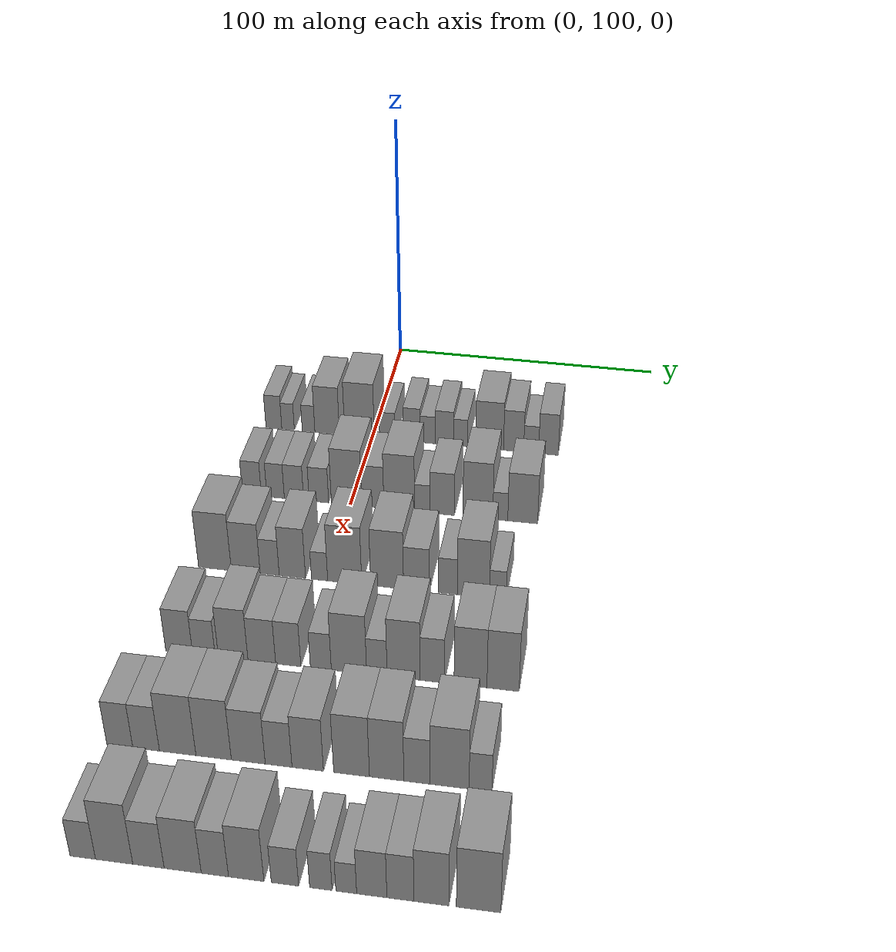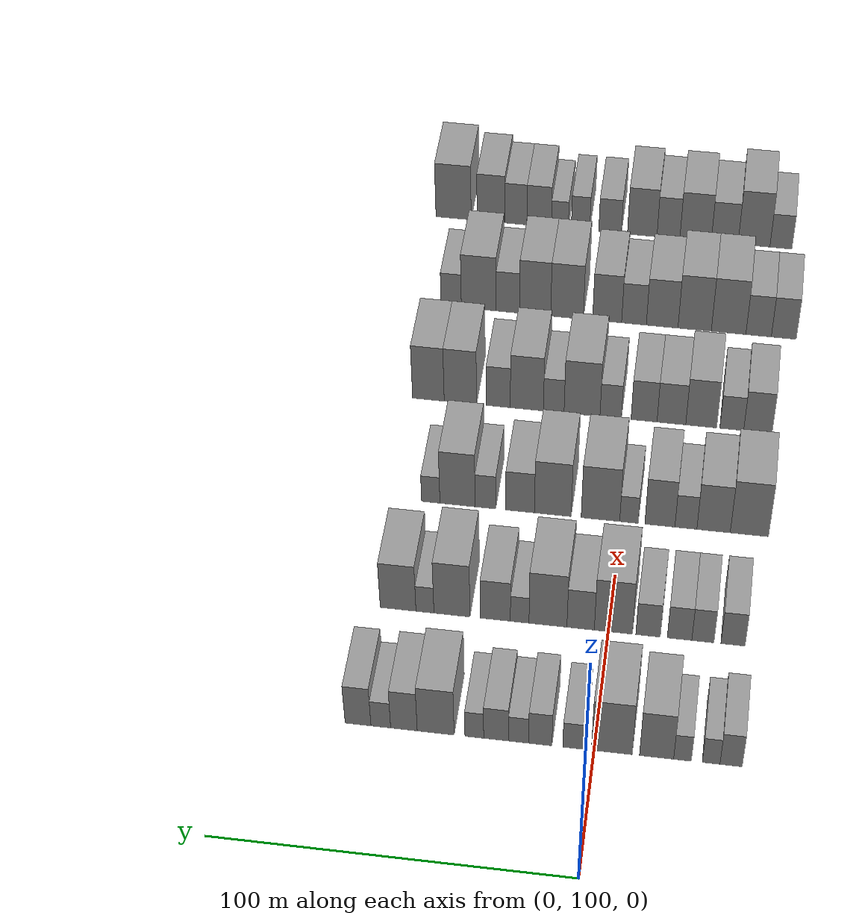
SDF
<sdf version="1.6">
 <world name="default">
  <model name="building_68">
   <static>1</static>
   <pose>50.0000 62.6498 0 0.000000 0.000000 0.000000</pose>
   <link name="link">
    <pose>0 0 7.50 0 0 0</pose>
    <collision name="collision"><geometry><box><size>20.0000 6.0474 15.0000</size></box></geometry></collision>
    <visual name="visual">
     <cast_shadows>0</cast_shadows>
     <geometry><box><size>20.0000 6.0474 15.0000</size></box></geometry>
     <material>
      <script>
       <uri>model://grey_wall/materials/scripts</uri>
       <uri>model://grey_wall/materials/textures</uri>
       <name>vrc/grey_wall</name>
      </script>
     </material>
    </visual>
   </link>
  </model>
  <model name="building_69">
   <static>1</static>
   <pose>50.0000 68.0770 0 0.000000 0.000000 0.000000</pose>
   <link name="link">
    <pose>0 0 6.00 0 0 0</pose>
    <collision name="collision"><geometry><box><size>20.0000 4.8069 12.0000</size></box></geometry></collision>
    <visual name="visual">
     <cast_shadows>0</cast_shadows>
     <geometry><box><size>20.0000 4.8069 12.0000</size></box></geometry>
     <material>
      <script>
       <uri>model://grey_wall/materials/scripts</uri>
       <uri>model://grey_wall/materials/textures</uri>
       <name>vrc/grey_wall</name>
      </script>
     </material>
    </visual>
   </link>
  </model>
  <model name="building_70">
   <static>1</static>
   <pose>50.0000 75.8929 0 0.000000 0.000000 0.000000</pose>
   <link name="link">
    <pose>0 0 6.00 0 0 0</pose>
    <collision name="collision"><geometry><box><size>20.0000 4.8249 12.0000</size></box></geometry></collision>
    <visual name="visual">
     <cast_shadows>0</cast_shadows>
     <geometry><box><size>20.0000 4.8249 12.0000</size></box></geometry>
     <material>
      <script>
       <uri>model://grey_wall/materials/scripts</uri>
       <uri>model://grey_wall/materials/textures</uri>
       <name>vrc/grey_wall</name>
      </script>
     </material>
    </visual>
   </link>
  </model>
  <model name="building_71">
   <static>1</static>
   <pose>50.0000 82.9757 0 0.000000 0.000000 0.000000</pose>
   <link name="link">
    <pose>0 0 10.50 0 0 0</pose>
    <collision name="collision"><geometry><box><size>20.0000 9.3408 21.0000</size></box></geometry></collision>
    <visual name="visual">
     <cast_shadows>0</cast_shadows>
     <geometry><box><size>20.0000 9.3408 21.0000</size></box></geometry>
     <material>
      <script>
       <uri>model://grey_wall/materials/scripts</uri>
       <uri>model://grey_wall/materials/textures</uri>
       <name>vrc/grey_wall</name>
      </script>
     </material>
    </visual>
   </link>
  </model>
  <model name="building_72">
   <static>1</static>
   <pose>50.0000 95.2500 0 0.000000 0.000000 0.000000</pose>
   <link name="link">
    <pose>0 0 12.00 0 0 0</pose>
    <collision name="collision"><geometry><box><size>20.0000 11.2077 24.0000</size></box></geometry></collision>
    <visual name="visual">
     <cast_shadows>0</cast_shadows>
     <geometry><box><size>20.0000 11.2077 24.0000</size></box></geometry>
     <material>
      <script>
       <uri>model://grey_wall/materials/scripts</uri>
       <uri>model://grey_wall/materials/textures</uri>
       <name>vrc/grey_wall</name>
      </script>
     </material>
    </visual>
   </link>
  </model>
  <model name="building_73">
   <static>1</static>
   <pose>50.0000 105.7964 0 0.000000 0.000000 0.000000</pose>
   <link name="link">
    <pose>0 0 6.00 0 0 0</pose>
    <collision name="collision"><geometry><box><size>20.0000 5.8852 12.0000</size></box></geometry></collision>
    <visual name="visual">
     <cast_shadows>0</cast_shadows>
     <geometry><box><size>20.0000 5.8852 12.0000</size></box></geometry>
     <material>
      <script>
       <uri>model://grey_wall/materials/scripts</uri>
       <uri>model://grey_wall/materials/textures</uri>
       <name>vrc/grey_wall</name>
      </script>
     </material>
    </visual>
   </link>
  </model>
  <model name="building_74">
   <static>1</static>
   <pose>50.0000 114.9547 0 0.000000 0.000000 0.000000</pose>
   <link name="link">
    <pose>0 0 7.50 0 0 0</pose>
    <collision name="collision"><geometry><box><size>20.0000 6.4314 15.0000</size></box></geometry></collision>
    <visual name="visual">
     <cast_shadows>0</cast_shadows>
     <geometry><box><size>20.0000 6.4314 15.0000</size></box></geometry>
     <material>
      <script>
       <uri>model://grey_wall/materials/scripts</uri>
       <uri>model://grey_wall/materials/textures</uri>
       <name>vrc/grey_wall</name>
      </script>
     </material>
    </visual>
   </link>
  </model>
  <model name="building_75">
   <static>1</static>
   <pose>50.0000 120.9722 0 0.000000 0.000000 0.000000</pose>
   <link name="link">
    <pose>0 0 6.00 0 0 0</pose>
    <collision name="collision"><geometry><box><size>20.0000 5.6037 12.0000</size></box></geometry></collision>
    <visual name="visual">
     <cast_shadows>0</cast_shadows>
     <geometry><box><size>20.0000 5.6037 12.0000</size></box></geometry>
     <material>
      <script>
       <uri>model://grey_wall/materials/scripts</uri>
       <uri>model://grey_wall/materials/textures</uri>
       <name>vrc/grey_wall</name>
      </script>
     </material>
    </visual>
   </link>
  </model>
  <model name="building_76">
   <static>1</static>
   <pose>50.0000 127.1886 0 0.000000 0.000000 0.000000</pose>
   <link name="link">
    <pose>0 0 7.50 0 0 0</pose>
    <collision name="collision"><geometry><box><size>20.0000 6.8289 15.0000</size></box></geometry></collision>
    <visual name="visual">
     <cast_shadows>0</cast_shadows>
     <geometry><box><size>20.0000 6.8289 15.0000</size></box></geometry>
     <material>
      <script>
       <uri>model://grey_wall/materials/scripts</uri>
       <uri>model://grey_wall/materials/textures</uri>
       <name>vrc/grey_wall</name>
      </script>
     </material>
    </visual>
   </link>
  </model>
  <model name="building_77">
   <static>1</static>
   <pose>50.0000 133.1987 0 0.000000 0.000000 0.000000</pose>
   <link name="link">
    <pose>0 0 6.00 0 0 0</pose>
    <collision name="collision"><geometry><box><size>20.0000 5.1913 12.0000</size></box></geometry></collision>
    <visual name="visual">
     <cast_shadows>0</cast_shadows>
     <geometry><box><size>20.0000 5.1913 12.0000</size></box></geometry>
     <material>
      <script>
       <uri>model://grey_wall/materials/scripts</uri>
       <uri>model://grey_wall/materials/textures</uri>
       <name>vrc/grey_wall</name>
      </script>
     </material>
    </visual>
   </link>
  </model>
  <model name="building_78">
   <static>1</static>
   <pose>50.0000 143.9286 0 0.000000 0.000000 0.000000</pose>
   <link name="link">
    <pose>0 0 10.50 0 0 0</pose>
    <collision name="collision"><geometry><box><size>20.0000 10.2685 21.0000</size></box></geometry></collision>
    <visual name="visual">
     <cast_shadows>0</cast_shadows>
     <geometry><box><size>20.0000 10.2685 21.0000</size></box></geometry>
     <material>
      <script>
       <uri>model://grey_wall/materials/scripts</uri>
       <uri>model://grey_wall/materials/textures</uri>
       <name>vrc/grey_wall</name>
      </script>
     </material>
    </visual>
   </link>
  </model>
  <model name="building_79">
   <static>1</static>
   <pose>50.0000 152.7708 0 0.000000 0.000000 0.000000</pose>
   <link name="link">
    <pose>0 0 9.00 0 0 0</pose>
    <collision name="collision"><geometry><box><size>20.0000 7.4159 18.0000</size></box></geometry></collision>
    <visual name="visual">
     <cast_shadows>0</cast_shadows>
     <geometry><box><size>20.0000 7.4159 18.0000</size></box></geometry>
     <material>
      <script>
       <uri>model://grey_wall/materials/scripts</uri>
       <uri>model://grey_wall/materials/textures</uri>
       <name>vrc/grey_wall</name>
      </script>
     </material>
    </visual>
   </link>
  </model>
  <model name="building_80">
   <static>1</static>
   <pose>50.0000 159.2248 0 0.000000 0.000000 0.000000</pose>
   <link name="link">
    <pose>0 0 6.00 0 0 0</pose>
    <collision name="collision"><geometry><box><size>20.0000 5.4920 12.0000</size></box></geometry></collision>
    <visual name="visual">
     <cast_shadows>0</cast_shadows>
     <geometry><box><size>20.0000 5.4920 12.0000</size></box></geometry>
     <material>
      <script>
       <uri>model://grey_wall/materials/scripts</uri>
       <uri>model://grey_wall/materials/textures</uri>
       <name>vrc/grey_wall</name>
      </script>
     </material>
    </visual>
   </link>
  </model>
  <model name="building_81">
   <static>1</static>
   <pose>50.0000 165.5749 0 0.000000 0.000000 0.000000</pose>
   <link name="link">
    <pose>0 0 9.00 0 0 0</pose>
    <collision name="collision"><geometry><box><size>20.0000 7.2083 18.0000</size></box></geometry></collision>
    <visual name="visual">
     <cast_shadows>0</cast_shadows>
     <geometry><box><size>20.0000 7.2083 18.0000</size></box></geometry>
     <material>
      <script>
       <uri>model://grey_wall/materials/scripts</uri>
       <uri>model://grey_wall/materials/textures</uri>
       <name>vrc/grey_wall</name>
      </script>
     </material>
    </visual>
   </link>
  </model>
  <model name="building_204">
   <static>1</static>
   <pose>90.0000 64.6598 0 0.000000 0.000000 0.000000</pose>
   <link name="link">
    <pose>0 0 7.50 0 0 0</pose>
    <collision name="collision"><geometry><box><size>20.0000 6.8189 15.0000</size></box></geometry></collision>
    <visual name="visual">
     <cast_shadows>0</cast_shadows>
     <geometry><box><size>20.0000 6.8189 15.0000</size></box></geometry>
     <material>
      <script>
       <uri>model://grey_wall/materials/scripts</uri>
       <uri>model://grey_wall/materials/textures</uri>
       <name>vrc/grey_wall</name>
      </script>
     </material>
    </visual>
   </link>
  </model>
  <model name="building_205">
   <static>1</static>
   <pose>90.0000 73.2095 0 0.000000 0.000000 0.000000</pose>
   <link name="link">
    <pose>0 0 7.50 0 0 0</pose>
    <collision name="collision"><geometry><box><size>20.0000 6.2806 15.0000</size></box></geometry></collision>
    <visual name="visual">
     <cast_shadows>0</cast_shadows>
     <geometry><box><size>20.0000 6.2806 15.0000</size></box></geometry>
     <material>
      <script>
       <uri>model://grey_wall/materials/scripts</uri>
       <uri>model://grey_wall/materials/textures</uri>
       <name>vrc/grey_wall</name>
      </script>
     </material>
    </visual>
   </link>
  </model>
  <model name="building_206">
   <static>1</static>
   <pose>90.0000 79.8359 0 0.000000 0.000000 0.000000</pose>
   <link name="link">
    <pose>0 0 7.50 0 0 0</pose>
    <collision name="collision"><geometry><box><size>20.0000 6.9722 15.0000</size></box></geometry></collision>
    <visual name="visual">
     <cast_shadows>0</cast_shadows>
     <geometry><box><size>20.0000 6.9722 15.0000</size></box></geometry>
     <material>
      <script>
       <uri>model://grey_wall/materials/scripts</uri>
       <uri>model://grey_wall/materials/textures</uri>
       <name>vrc/grey_wall</name>
      </script>
     </material>
    </visual>
   </link>
  </model>
  <model name="building_207">
   <static>1</static>
   <pose>90.0000 88.8067 0 0.000000 0.000000 0.000000</pose>
   <link name="link">
    <pose>0 0 7.50 0 0 0</pose>
    <collision name="collision"><geometry><box><size>20.0000 6.9694 15.0000</size></box></geometry></collision>
    <visual name="visual">
     <cast_shadows>0</cast_shadows>
     <geometry><box><size>20.0000 6.9694 15.0000</size></box></geometry>
     <material>
      <script>
       <uri>model://grey_wall/materials/scripts</uri>
       <uri>model://grey_wall/materials/textures</uri>
       <name>vrc/grey_wall</name>
      </script>
     </material>
    </visual>
   </link>
  </model>
  <model name="building_208">
   <static>1</static>
   <pose>90.0000 98.7332 0 0.000000 0.000000 0.000000</pose>
   <link name="link">
    <pose>0 0 12.00 0 0 0</pose>
    <collision name="collision"><geometry><box><size>20.0000 10.8836 24.0000</size></box></geometry></collision>
    <visual name="visual">
     <cast_shadows>0</cast_shadows>
     <geometry><box><size>20.0000 10.8836 24.0000</size></box></geometry>
     <material>
      <script>
       <uri>model://grey_wall/materials/scripts</uri>
       <uri>model://grey_wall/materials/textures</uri>
       <name>vrc/grey_wall</name>
      </script>
     </material>
    </visual>
   </link>
  </model>
  <model name="building_209">
   <static>1</static>
   <pose>90.0000 108.1023 0 0.000000 0.000000 0.000000</pose>
   <link name="link">
    <pose>0 0 9.00 0 0 0</pose>
    <collision name="collision"><geometry><box><size>20.0000 7.8547 18.0000</size></box></geometry></collision>
    <visual name="visual">
     <cast_shadows>0</cast_shadows>
     <geometry><box><size>20.0000 7.8547 18.0000</size></box></geometry>
     <material>
      <script>
       <uri>model://grey_wall/materials/scripts</uri>
       <uri>model://grey_wall/materials/textures</uri>
       <name>vrc/grey_wall</name>
      </script>
     </material>
    </visual>
   </link>
  </model>
  <model name="building_210">
   <static>1</static>
   <pose>90.0000 117.4750 0 0.000000 0.000000 0.000000</pose>
   <link name="link">
    <pose>0 0 12.00 0 0 0</pose>
    <collision name="collision"><geometry><box><size>20.0000 10.8906 24.0000</size></box></geometry></collision>
    <visual name="visual">
     <cast_shadows>0</cast_shadows>
     <geometry><box><size>20.0000 10.8906 24.0000</size></box></geometry>
     <material>
      <script>
       <uri>model://grey_wall/materials/scripts</uri>
       <uri>model://grey_wall/materials/textures</uri>
       <name>vrc/grey_wall</name>
      </script>
     </material>
    </visual>
   </link>
  </model>
  <model name="building_211">
   <static>1</static>
   <pose>90.0000 125.5967 0 0.000000 0.000000 0.000000</pose>
   <link name="link">
    <pose>0 0 6.00 0 0 0</pose>
    <collision name="collision"><geometry><box><size>20.0000 5.3529 12.0000</size></box></geometry></collision>
    <visual name="visual">
     <cast_shadows>0</cast_shadows>
     <geometry><box><size>20.0000 5.3529 12.0000</size></box></geometry>
     <material>
      <script>
       <uri>model://grey_wall/materials/scripts</uri>
       <uri>model://grey_wall/materials/textures</uri>
       <name>vrc/grey_wall</name>
      </script>
     </material>
    </visual>
   </link>
  </model>
  <model name="building_212">
   <static>1</static>
   <pose>90.0000 132.6022 0 0.000000 0.000000 0.000000</pose>
   <link name="link">
    <pose>0 0 9.00 0 0 0</pose>
    <collision name="collision"><geometry><box><size>20.0000 8.6582 18.0000</size></box></geometry></collision>
    <visual name="visual">
     <cast_shadows>0</cast_shadows>
     <geometry><box><size>20.0000 8.6582 18.0000</size></box></geometry>
     <material>
      <script>
       <uri>model://grey_wall/materials/scripts</uri>
       <uri>model://grey_wall/materials/textures</uri>
       <name>vrc/grey_wall</name>
      </script>
     </material>
    </visual>
   </link>
  </model>
  <model name="building_213">
   <static>1</static>
   <pose>90.0000 145.1424 0 0.000000 0.000000 0.000000</pose>
   <link name="link">
    <pose>0 0 12.00 0 0 0</pose>
    <collision name="collision"><geometry><box><size>20.0000 10.4220 24.0000</size></box></geometry></collision>
    <visual name="visual">
     <cast_shadows>0</cast_shadows>
     <geometry><box><size>20.0000 10.4220 24.0000</size></box></geometry>
     <material>
      <script>
       <uri>model://grey_wall/materials/scripts</uri>
       <uri>model://grey_wall/materials/textures</uri>
       <name>vrc/grey_wall</name>
      </script>
     </material>
    </visual>
   </link>
  </model>
  <model name="building_214">
   <static>1</static>
   <pose>90.0000 152.9586 0 0.000000 0.000000 0.000000</pose>
   <link name="link">
    <pose>0 0 6.00 0 0 0</pose>
    <collision name="collision"><geometry><box><size>20.0000 5.2104 12.0000</size></box></geometry></collision>
    <visual name="visual">
     <cast_shadows>0</cast_shadows>
     <geometry><box><size>20.0000 5.2104 12.0000</size></box></geometry>
     <material>
      <script>
       <uri>model://grey_wall/materials/scripts</uri>
       <uri>model://grey_wall/materials/textures</uri>
       <name>vrc/grey_wall</name>
      </script>
     </material>
    </visual>
   </link>
  </model>
  <model name="building_215">
   <static>1</static>
   <pose>90.0000 160.7411 0 0.000000 0.000000 0.000000</pose>
   <link name="link">
    <pose>0 0 10.50 0 0 0</pose>
    <collision name="collision"><geometry><box><size>20.0000 10.3547 21.0000</size></box></geometry></collision>
    <visual name="visual">
     <cast_shadows>0</cast_shadows>
     <geometry><box><size>20.0000 10.3547 21.0000</size></box></geometry>
     <material>
      <script>
       <uri>model://grey_wall/materials/scripts</uri>
       <uri>model://grey_wall/materials/textures</uri>
       <name>vrc/grey_wall</name>
      </script>
     </material>
    </visual>
   </link>
  </model>
  <model name="building_334">
   <static>1</static>
   <pose>130.0000 62.3949 0 0.000000 0.000000 0.000000</pose>
   <link name="link">
    <pose>0 0 12.00 0 0 0</pose>
    <collision name="collision"><geometry><box><size>20.0000 11.2468 24.0000</size></box></geometry></collision>
    <visual name="visual">
     <cast_shadows>0</cast_shadows>
     <geometry><box><size>20.0000 11.2468 24.0000</size></box></geometry>
     <material>
      <script>
       <uri>model://grey_wall/materials/scripts</uri>
       <uri>model://grey_wall/materials/textures</uri>
       <name>vrc/grey_wall</name>
      </script>
     </material>
    </visual>
   </link>
  </model>
  <model name="building_335">
   <static>1</static>
   <pose>130.0000 72.9431 0 0.000000 0.000000 0.000000</pose>
   <link name="link">
    <pose>0 0 10.50 0 0 0</pose>
    <collision name="collision"><geometry><box><size>20.0000 9.8496 21.0000</size></box></geometry></collision>
    <visual name="visual">
     <cast_shadows>0</cast_shadows>
     <geometry><box><size>20.0000 9.8496 21.0000</size></box></geometry>
     <material>
      <script>
       <uri>model://grey_wall/materials/scripts</uri>
       <uri>model://grey_wall/materials/textures</uri>
       <name>vrc/grey_wall</name>
      </script>
     </material>
    </visual>
   </link>
  </model>
  <model name="building_336">
   <static>1</static>
   <pose>130.0000 81.1132 0 0.000000 0.000000 0.000000</pose>
   <link name="link">
    <pose>0 0 7.50 0 0 0</pose>
    <collision name="collision"><geometry><box><size>20.0000 6.4907 15.0000</size></box></geometry></collision>
    <visual name="visual">
     <cast_shadows>0</cast_shadows>
     <geometry><box><size>20.0000 6.4907 15.0000</size></box></geometry>
     <material>
      <script>
       <uri>model://grey_wall/materials/scripts</uri>
       <uri>model://grey_wall/materials/textures</uri>
       <name>vrc/grey_wall</name>
      </script>
     </material>
    </visual>
   </link>
  </model>
  <model name="building_337">
   <static>1</static>
   <pose>130.0000 88.8090 0 0.000000 0.000000 0.000000</pose>
   <link name="link">
    <pose>0 0 10.50 0 0 0</pose>
    <collision name="collision"><geometry><box><size>20.0000 8.9009 21.0000</size></box></geometry></collision>
    <visual name="visual">
     <cast_shadows>0</cast_shadows>
     <geometry><box><size>20.0000 8.9009 21.0000</size></box></geometry>
     <material>
      <script>
       <uri>model://grey_wall/materials/scripts</uri>
       <uri>model://grey_wall/materials/textures</uri>
       <name>vrc/grey_wall</name>
      </script>
     </material>
    </visual>
   </link>
  </model>
  <model name="building_338">
   <static>1</static>
   <pose>130.0000 97.9963 0 0.000000 0.000000 0.000000</pose>
   <link name="link">
    <pose>0 0 6.00 0 0 0</pose>
    <collision name="collision"><geometry><box><size>20.0000 5.4737 12.0000</size></box></geometry></collision>
    <visual name="visual">
     <cast_shadows>0</cast_shadows>
     <geometry><box><size>20.0000 5.4737 12.0000</size></box></geometry>
     <material>
      <script>
       <uri>model://grey_wall/materials/scripts</uri>
       <uri>model://grey_wall/materials/textures</uri>
       <name>vrc/grey_wall</name>
      </script>
     </material>
    </visual>
   </link>
  </model>
  <model name="building_339">
   <static>1</static>
   <pose>130.0000 106.4595 0 0.000000 0.000000 0.000000</pose>
   <link name="link">
    <pose>0 0 12.00 0 0 0</pose>
    <collision name="collision"><geometry><box><size>20.0000 11.4526 24.0000</size></box></geometry></collision>
    <visual name="visual">
     <cast_shadows>0</cast_shadows>
     <geometry><box><size>20.0000 11.4526 24.0000</size></box></geometry>
     <material>
      <script>
       <uri>model://grey_wall/materials/scripts</uri>
       <uri>model://grey_wall/materials/textures</uri>
       <name>vrc/grey_wall</name>
      </script>
     </material>
    </visual>
   </link>
  </model>
  <model name="building_340">
   <static>1</static>
   <pose>130.0000 120.6667 0 0.000000 0.000000 0.000000</pose>
   <link name="link">
    <pose>0 0 12.00 0 0 0</pose>
    <collision name="collision"><geometry><box><size>20.0000 10.9618 24.0000</size></box></geometry></collision>
    <visual name="visual">
     <cast_shadows>0</cast_shadows>
     <geometry><box><size>20.0000 10.9618 24.0000</size></box></geometry>
     <material>
      <script>
       <uri>model://grey_wall/materials/scripts</uri>
       <uri>model://grey_wall/materials/textures</uri>
       <name>vrc/grey_wall</name>
      </script>
     </material>
    </visual>
   </link>
  </model>
  <model name="building_341">
   <static>1</static>
   <pose>130.0000 130.4382 0 0.000000 0.000000 0.000000</pose>
   <link name="link">
    <pose>0 0 9.00 0 0 0</pose>
    <collision name="collision"><geometry><box><size>20.0000 8.5813 18.0000</size></box></geometry></collision>
    <visual name="visual">
     <cast_shadows>0</cast_shadows>
     <geometry><box><size>20.0000 8.5813 18.0000</size></box></geometry>
     <material>
      <script>
       <uri>model://grey_wall/materials/scripts</uri>
       <uri>model://grey_wall/materials/textures</uri>
       <name>vrc/grey_wall</name>
      </script>
     </material>
    </visual>
   </link>
  </model>
  <model name="building_342">
   <static>1</static>
   <pose>130.0000 140.8250 0 0.000000 0.000000 0.000000</pose>
   <link name="link">
    <pose>0 0 7.50 0 0 0</pose>
    <collision name="collision"><geometry><box><size>20.0000 6.1924 15.0000</size></box></geometry></collision>
    <visual name="visual">
     <cast_shadows>0</cast_shadows>
     <geometry><box><size>20.0000 6.1924 15.0000</size></box></geometry>
     <material>
      <script>
       <uri>model://grey_wall/materials/scripts</uri>
       <uri>model://grey_wall/materials/textures</uri>
       <name>vrc/grey_wall</name>
      </script>
     </material>
    </visual>
   </link>
  </model>
  <model name="building_343">
   <static>1</static>
   <pose>130.0000 149.2085 0 0.000000 0.000000 0.000000</pose>
   <link name="link">
    <pose>0 0 12.00 0 0 0</pose>
    <collision name="collision"><geometry><box><size>20.0000 10.5746 24.0000</size></box></geometry></collision>
    <visual name="visual">
     <cast_shadows>0</cast_shadows>
     <geometry><box><size>20.0000 10.5746 24.0000</size></box></geometry>
     <material>
      <script>
       <uri>model://grey_wall/materials/scripts</uri>
       <uri>model://grey_wall/materials/textures</uri>
       <name>vrc/grey_wall</name>
      </script>
     </material>
    </visual>
   </link>
  </model>
  <model name="building_344">
   <static>1</static>
   <pose>130.0000 157.2499 0 0.000000 0.000000 0.000000</pose>
   <link name="link">
    <pose>0 0 6.00 0 0 0</pose>
    <collision name="collision"><geometry><box><size>20.0000 5.5083 12.0000</size></box></geometry></collision>
    <visual name="visual">
     <cast_shadows>0</cast_shadows>
     <geometry><box><size>20.0000 5.5083 12.0000</size></box></geometry>
     <material>
      <script>
       <uri>model://grey_wall/materials/scripts</uri>
       <uri>model://grey_wall/materials/textures</uri>
       <name>vrc/grey_wall</name>
      </script>
     </material>
    </visual>
   </link>
  </model>
  <model name="building_476">
   <static>1</static>
   <pose>170.0000 62.1468 0 0.000000 0.000000 0.000000</pose>
   <link name="link">
    <pose>0 0 9.00 0 0 0</pose>
    <collision name="collision"><geometry><box><size>20.0000 8.6616 18.0000</size></box></geometry></collision>
    <visual name="visual">
     <cast_shadows>0</cast_shadows>
     <geometry><box><size>20.0000 8.6616 18.0000</size></box></geometry>
     <material>
      <script>
       <uri>model://grey_wall/materials/scripts</uri>
       <uri>model://grey_wall/materials/textures</uri>
       <name>vrc/grey_wall</name>
      </script>
     </material>
    </visual>
   </link>
  </model>
  <model name="building_477">
   <static>1</static>
   <pose>170.0000 70.1141 0 0.000000 0.000000 0.000000</pose>
   <link name="link">
    <pose>0 0 7.50 0 0 0</pose>
    <collision name="collision"><geometry><box><size>20.0000 7.2729 15.0000</size></box></geometry></collision>
    <visual name="visual">
     <cast_shadows>0</cast_shadows>
     <geometry><box><size>20.0000 7.2729 15.0000</size></box></geometry>
     <material>
      <script>
       <uri>model://grey_wall/materials/scripts</uri>
       <uri>model://grey_wall/materials/textures</uri>
       <name>vrc/grey_wall</name>
      </script>
     </material>
    </visual>
   </link>
  </model>
  <model name="building_478">
   <static>1</static>
   <pose>170.0000 79.4885 0 0.000000 0.000000 0.000000</pose>
   <link name="link">
    <pose>0 0 10.50 0 0 0</pose>
    <collision name="collision"><geometry><box><size>20.0000 9.4758 21.0000</size></box></geometry></collision>
    <visual name="visual">
     <cast_shadows>0</cast_shadows>
     <geometry><box><size>20.0000 9.4758 21.0000</size></box></geometry>
     <material>
      <script>
       <uri>model://grey_wall/materials/scripts</uri>
       <uri>model://grey_wall/materials/textures</uri>
       <name>vrc/grey_wall</name>
      </script>
     </material>
    </visual>
   </link>
  </model>
  <model name="building_479">
   <static>1</static>
   <pose>170.0000 88.6332 0 0.000000 0.000000 0.000000</pose>
   <link name="link">
    <pose>0 0 9.00 0 0 0</pose>
    <collision name="collision"><geometry><box><size>20.0000 8.8137 18.0000</size></box></geometry></collision>
    <visual name="visual">
     <cast_shadows>0</cast_shadows>
     <geometry><box><size>20.0000 8.8137 18.0000</size></box></geometry>
     <material>
      <script>
       <uri>model://grey_wall/materials/scripts</uri>
       <uri>model://grey_wall/materials/textures</uri>
       <name>vrc/grey_wall</name>
      </script>
     </material>
    </visual>
   </link>
  </model>
  <model name="building_480">
   <static>1</static>
   <pose>170.0000 97.0409 0 0.000000 0.000000 0.000000</pose>
   <link name="link">
    <pose>0 0 9.00 0 0 0</pose>
    <collision name="collision"><geometry><box><size>20.0000 8.0017 18.0000</size></box></geometry></collision>
    <visual name="visual">
     <cast_shadows>0</cast_shadows>
     <geometry><box><size>20.0000 8.0017 18.0000</size></box></geometry>
     <material>
      <script>
       <uri>model://grey_wall/materials/scripts</uri>
       <uri>model://grey_wall/materials/textures</uri>
       <name>vrc/grey_wall</name>
      </script>
     </material>
    </visual>
   </link>
  </model>
  <model name="building_481">
   <static>1</static>
   <pose>170.0000 107.3435 0 0.000000 0.000000 0.000000</pose>
   <link name="link">
    <pose>0 0 7.50 0 0 0</pose>
    <collision name="collision"><geometry><box><size>20.0000 6.6034 15.0000</size></box></geometry></collision>
    <visual name="visual">
     <cast_shadows>0</cast_shadows>
     <geometry><box><size>20.0000 6.6034 15.0000</size></box></geometry>
     <material>
      <script>
       <uri>model://grey_wall/materials/scripts</uri>
       <uri>model://grey_wall/materials/textures</uri>
       <name>vrc/grey_wall</name>
      </script>
     </material>
    </visual>
   </link>
  </model>
  <model name="building_482">
   <static>1</static>
   <pose>170.0000 116.2021 0 0.000000 0.000000 0.000000</pose>
   <link name="link">
    <pose>0 0 12.00 0 0 0</pose>
    <collision name="collision"><geometry><box><size>20.0000 11.1137 24.0000</size></box></geometry></collision>
    <visual name="visual">
     <cast_shadows>0</cast_shadows>
     <geometry><box><size>20.0000 11.1137 24.0000</size></box></geometry>
     <material>
      <script>
       <uri>model://grey_wall/materials/scripts</uri>
       <uri>model://grey_wall/materials/textures</uri>
       <name>vrc/grey_wall</name>
      </script>
     </material>
    </visual>
   </link>
  </model>
  <model name="building_483">
   <static>1</static>
   <pose>170.0000 124.9570 0 0.000000 0.000000 0.000000</pose>
   <link name="link">
    <pose>0 0 7.50 0 0 0</pose>
    <collision name="collision"><geometry><box><size>20.0000 6.3961 15.0000</size></box></geometry></collision>
    <visual name="visual">
     <cast_shadows>0</cast_shadows>
     <geometry><box><size>20.0000 6.3961 15.0000</size></box></geometry>
     <material>
      <script>
       <uri>model://grey_wall/materials/scripts</uri>
       <uri>model://grey_wall/materials/textures</uri>
       <name>vrc/grey_wall</name>
      </script>
     </material>
    </visual>
   </link>
  </model>
  <model name="building_484">
   <static>1</static>
   <pose>170.0000 133.2918 0 0.000000 0.000000 0.000000</pose>
   <link name="link">
    <pose>0 0 12.00 0 0 0</pose>
    <collision name="collision"><geometry><box><size>20.0000 10.2735 24.0000</size></box></geometry></collision>
    <visual name="visual">
     <cast_shadows>0</cast_shadows>
     <geometry><box><size>20.0000 10.2735 24.0000</size></box></geometry>
     <material>
      <script>
       <uri>model://grey_wall/materials/scripts</uri>
       <uri>model://grey_wall/materials/textures</uri>
       <name>vrc/grey_wall</name>
      </script>
     </material>
    </visual>
   </link>
  </model>
  <model name="building_485">
   <static>1</static>
   <pose>170.0000 142.1737 0 0.000000 0.000000 0.000000</pose>
   <link name="link">
    <pose>0 0 9.00 0 0 0</pose>
    <collision name="collision"><geometry><box><size>20.0000 7.4903 18.0000</size></box></geometry></collision>
    <visual name="visual">
     <cast_shadows>0</cast_shadows>
     <geometry><box><size>20.0000 7.4903 18.0000</size></box></geometry>
     <material>
      <script>
       <uri>model://grey_wall/materials/scripts</uri>
       <uri>model://grey_wall/materials/textures</uri>
       <name>vrc/grey_wall</name>
      </script>
     </material>
    </visual>
   </link>
  </model>
  <model name="building_486">
   <static>1</static>
   <pose>170.0000 153.9751 0 0.000000 0.000000 0.000000</pose>
   <link name="link">
    <pose>0 0 12.00 0 0 0</pose>
    <collision name="collision"><geometry><box><size>20.0000 10.1125 24.0000</size></box></geometry></collision>
    <visual name="visual">
     <cast_shadows>0</cast_shadows>
     <geometry><box><size>20.0000 10.1125 24.0000</size></box></geometry>
     <material>
      <script>
       <uri>model://grey_wall/materials/scripts</uri>
       <uri>model://grey_wall/materials/textures</uri>
       <name>vrc/grey_wall</name>
      </script>
     </material>
    </visual>
   </link>
  </model>
  <model name="building_487">
   <static>1</static>
   <pose>170.0000 163.9671 0 0.000000 0.000000 0.000000</pose>
   <link name="link">
    <pose>0 0 12.00 0 0 0</pose>
    <collision name="collision"><geometry><box><size>20.0000 9.8715 24.0000</size></box></geometry></collision>
    <visual name="visual">
     <cast_shadows>0</cast_shadows>
     <geometry><box><size>20.0000 9.8715 24.0000</size></box></geometry>
     <material>
      <script>
       <uri>model://grey_wall/materials/scripts</uri>
       <uri>model://grey_wall/materials/textures</uri>
       <name>vrc/grey_wall</name>
      </script>
     </material>
    </visual>
   </link>
  </model>
  <model name="building_615">
   <static>1</static>
   <pose>210.0000 56.2129 0 0.000000 0.000000 0.000000</pose>
   <link name="link">
    <pose>0 0 9.00 0 0 0</pose>
    <collision name="collision"><geometry><box><size>20.0000 7.8708 18.0000</size></box></geometry></collision>
    <visual name="visual">
     <cast_shadows>0</cast_shadows>
     <geometry><box><size>20.0000 7.8708 18.0000</size></box></geometry>
     <material>
      <script>
       <uri>model://grey_wall/materials/scripts</uri>
       <uri>model://grey_wall/materials/textures</uri>
       <name>vrc/grey_wall</name>
      </script>
     </material>
    </visual>
   </link>
  </model>
  <model name="building_616">
   <static>1</static>
   <pose>210.0000 64.1777 0 0.000000 0.000000 0.000000</pose>
   <link name="link">
    <pose>0 0 9.00 0 0 0</pose>
    <collision name="collision"><geometry><box><size>20.0000 8.0588 18.0000</size></box></geometry></collision>
    <visual name="visual">
     <cast_shadows>0</cast_shadows>
     <geometry><box><size>20.0000 8.0588 18.0000</size></box></geometry>
     <material>
      <script>
       <uri>model://grey_wall/materials/scripts</uri>
       <uri>model://grey_wall/materials/textures</uri>
       <name>vrc/grey_wall</name>
      </script>
     </material>
    </visual>
   </link>
  </model>
  <model name="building_617">
   <static>1</static>
   <pose>210.0000 73.6963 0 0.000000 0.000000 0.000000</pose>
   <link name="link">
    <pose>0 0 12.00 0 0 0</pose>
    <collision name="collision"><geometry><box><size>20.0000 10.9785 24.0000</size></box></geometry></collision>
    <visual name="visual">
     <cast_shadows>0</cast_shadows>
     <geometry><box><size>20.0000 10.9785 24.0000</size></box></geometry>
     <material>
      <script>
       <uri>model://grey_wall/materials/scripts</uri>
       <uri>model://grey_wall/materials/textures</uri>
       <name>vrc/grey_wall</name>
      </script>
     </material>
    </visual>
   </link>
  </model>
  <model name="building_618">
   <static>1</static>
   <pose>210.0000 84.4800 0 0.000000 0.000000 0.000000</pose>
   <link name="link">
    <pose>0 0 12.00 0 0 0</pose>
    <collision name="collision"><geometry><box><size>20.0000 10.5888 24.0000</size></box></geometry></collision>
    <visual name="visual">
     <cast_shadows>0</cast_shadows>
     <geometry><box><size>20.0000 10.5888 24.0000</size></box></geometry>
     <material>
      <script>
       <uri>model://grey_wall/materials/scripts</uri>
       <uri>model://grey_wall/materials/textures</uri>
       <name>vrc/grey_wall</name>
      </script>
     </material>
    </visual>
   </link>
  </model>
  <model name="building_619">
   <static>1</static>
   <pose>210.0000 94.8218 0 0.000000 0.000000 0.000000</pose>
   <link name="link">
    <pose>0 0 10.50 0 0 0</pose>
    <collision name="collision"><geometry><box><size>20.0000 10.0949 21.0000</size></box></geometry></collision>
    <visual name="visual">
     <cast_shadows>0</cast_shadows>
     <geometry><box><size>20.0000 10.0949 21.0000</size></box></geometry>
     <material>
      <script>
       <uri>model://grey_wall/materials/scripts</uri>
       <uri>model://grey_wall/materials/textures</uri>
       <name>vrc/grey_wall</name>
      </script>
     </material>
    </visual>
   </link>
  </model>
  <model name="building_620">
   <static>1</static>
   <pose>210.0000 103.8208 0 0.000000 0.000000 0.000000</pose>
   <link name="link">
    <pose>0 0 9.00 0 0 0</pose>
    <collision name="collision"><geometry><box><size>20.0000 7.9031 18.0000</size></box></geometry></collision>
    <visual name="visual">
     <cast_shadows>0</cast_shadows>
     <geometry><box><size>20.0000 7.9031 18.0000</size></box></geometry>
     <material>
      <script>
       <uri>model://grey_wall/materials/scripts</uri>
       <uri>model://grey_wall/materials/textures</uri>
       <name>vrc/grey_wall</name>
      </script>
     </material>
    </visual>
   </link>
  </model>
  <model name="building_621">
   <static>1</static>
   <pose>210.0000 112.4074 0 0.000000 0.000000 0.000000</pose>
   <link name="link">
    <pose>0 0 10.50 0 0 0</pose>
    <collision name="collision"><geometry><box><size>20.0000 9.2701 21.0000</size></box></geometry></collision>
    <visual name="visual">
     <cast_shadows>0</cast_shadows>
     <geometry><box><size>20.0000 9.2701 21.0000</size></box></geometry>
     <material>
      <script>
       <uri>model://grey_wall/materials/scripts</uri>
       <uri>model://grey_wall/materials/textures</uri>
       <name>vrc/grey_wall</name>
      </script>
     </material>
    </visual>
   </link>
  </model>
  <model name="building_622">
   <static>1</static>
   <pose>210.0000 125.2711 0 0.000000 0.000000 0.000000</pose>
   <link name="link">
    <pose>0 0 12.00 0 0 0</pose>
    <collision name="collision"><geometry><box><size>20.0000 10.4572 24.0000</size></box></geometry></collision>
    <visual name="visual">
     <cast_shadows>0</cast_shadows>
     <geometry><box><size>20.0000 10.4572 24.0000</size></box></geometry>
     <material>
      <script>
       <uri>model://grey_wall/materials/scripts</uri>
       <uri>model://grey_wall/materials/textures</uri>
       <name>vrc/grey_wall</name>
      </script>
     </material>
    </visual>
   </link>
  </model>
  <model name="building_623">
   <static>1</static>
   <pose>210.0000 135.5046 0 0.000000 0.000000 0.000000</pose>
   <link name="link">
    <pose>0 0 12.00 0 0 0</pose>
    <collision name="collision"><geometry><box><size>20.0000 10.0097 24.0000</size></box></geometry></collision>
    <visual name="visual">
     <cast_shadows>0</cast_shadows>
     <geometry><box><size>20.0000 10.0097 24.0000</size></box></geometry>
     <material>
      <script>
       <uri>model://grey_wall/materials/scripts</uri>
       <uri>model://grey_wall/materials/textures</uri>
       <name>vrc/grey_wall</name>
      </script>
     </material>
    </visual>
   </link>
  </model>
  <model name="building_624">
   <static>1</static>
   <pose>210.0000 144.2859 0 0.000000 0.000000 0.000000</pose>
   <link name="link">
    <pose>0 0 9.00 0 0 0</pose>
    <collision name="collision"><geometry><box><size>20.0000 7.5529 18.0000</size></box></geometry></collision>
    <visual name="visual">
     <cast_shadows>0</cast_shadows>
     <geometry><box><size>20.0000 7.5529 18.0000</size></box></geometry>
     <material>
      <script>
       <uri>model://grey_wall/materials/scripts</uri>
       <uri>model://grey_wall/materials/textures</uri>
       <name>vrc/grey_wall</name>
      </script>
     </material>
    </visual>
   </link>
  </model>
  <model name="building_625">
   <static>1</static>
   <pose>210.0000 153.6860 0 0.000000 0.000000 0.000000</pose>
   <link name="link">
    <pose>0 0 12.00 0 0 0</pose>
    <collision name="collision"><geometry><box><size>20.0000 11.2474 24.0000</size></box></geometry></collision>
    <visual name="visual">
     <cast_shadows>0</cast_shadows>
     <geometry><box><size>20.0000 11.2474 24.0000</size></box></geometry>
     <material>
      <script>
       <uri>model://grey_wall/materials/scripts</uri>
       <uri>model://grey_wall/materials/textures</uri>
       <name>vrc/grey_wall</name>
      </script>
     </material>
    </visual>
   </link>
  </model>
  <model name="building_626">
   <static>1</static>
   <pose>210.0000 162.5808 0 0.000000 0.000000 0.000000</pose>
   <link name="link">
    <pose>0 0 7.50 0 0 0</pose>
    <collision name="collision"><geometry><box><size>20.0000 6.5421 15.0000</size></box></geometry></collision>
    <visual name="visual">
     <cast_shadows>0</cast_shadows>
     <geometry><box><size>20.0000 6.5421 15.0000</size></box></geometry>
     <material>
      <script>
       <uri>model://grey_wall/materials/scripts</uri>
       <uri>model://grey_wall/materials/textures</uri>
       <name>vrc/grey_wall</name>
      </script>
     </material>
    </visual>
   </link>
  </model>
  <model name="building_754">
   <static>1</static>
   <pose>250.0000 59.1243 0 0.000000 0.000000 0.000000</pose>
   <link name="link">
    <pose>0 0 7.50 0 0 0</pose>
    <collision name="collision"><geometry><box><size>20.0000 7.2043 15.0000</size></box></geometry></collision>
    <visual name="visual">
     <cast_shadows>0</cast_shadows>
     <geometry><box><size>20.0000 7.2043 15.0000</size></box></geometry>
     <material>
      <script>
       <uri>model://grey_wall/materials/scripts</uri>
       <uri>model://grey_wall/materials/textures</uri>
       <name>vrc/grey_wall</name>
      </script>
     </material>
    </visual>
   </link>
  </model>
  <model name="building_755">
   <static>1</static>
   <pose>250.0000 67.9683 0 0.000000 0.000000 0.000000</pose>
   <link name="link">
    <pose>0 0 12.00 0 0 0</pose>
    <collision name="collision"><geometry><box><size>20.0000 10.4836 24.0000</size></box></geometry></collision>
    <visual name="visual">
     <cast_shadows>0</cast_shadows>
     <geometry><box><size>20.0000 10.4836 24.0000</size></box></geometry>
     <material>
      <script>
       <uri>model://grey_wall/materials/scripts</uri>
       <uri>model://grey_wall/materials/textures</uri>
       <name>vrc/grey_wall</name>
      </script>
     </material>
    </visual>
   </link>
  </model>
  <model name="building_756">
   <static>1</static>
   <pose>250.0000 77.6013 0 0.000000 0.000000 0.000000</pose>
   <link name="link">
    <pose>0 0 9.00 0 0 0</pose>
    <collision name="collision"><geometry><box><size>20.0000 8.7825 18.0000</size></box></geometry></collision>
    <visual name="visual">
     <cast_shadows>0</cast_shadows>
     <geometry><box><size>20.0000 8.7825 18.0000</size></box></geometry>
     <material>
      <script>
       <uri>model://grey_wall/materials/scripts</uri>
       <uri>model://grey_wall/materials/textures</uri>
       <name>vrc/grey_wall</name>
      </script>
     </material>
    </visual>
   </link>
  </model>
  <model name="building_757">
   <static>1</static>
   <pose>250.0000 87.1558 0 0.000000 0.000000 0.000000</pose>
   <link name="link">
    <pose>0 0 10.50 0 0 0</pose>
    <collision name="collision"><geometry><box><size>20.0000 10.3265 21.0000</size></box></geometry></collision>
    <visual name="visual">
     <cast_shadows>0</cast_shadows>
     <geometry><box><size>20.0000 10.3265 21.0000</size></box></geometry>
     <material>
      <script>
       <uri>model://grey_wall/materials/scripts</uri>
       <uri>model://grey_wall/materials/textures</uri>
       <name>vrc/grey_wall</name>
      </script>
     </material>
    </visual>
   </link>
  </model>
  <model name="building_758">
   <static>1</static>
   <pose>250.0000 96.0969 0 0.000000 0.000000 0.000000</pose>
   <link name="link">
    <pose>0 0 9.00 0 0 0</pose>
    <collision name="collision"><geometry><box><size>20.0000 7.5556 18.0000</size></box></geometry></collision>
    <visual name="visual">
     <cast_shadows>0</cast_shadows>
     <geometry><box><size>20.0000 7.5556 18.0000</size></box></geometry>
     <material>
      <script>
       <uri>model://grey_wall/materials/scripts</uri>
       <uri>model://grey_wall/materials/textures</uri>
       <name>vrc/grey_wall</name>
      </script>
     </material>
    </visual>
   </link>
  </model>
  <model name="building_759">
   <static>1</static>
   <pose>250.0000 104.7570 0 0.000000 0.000000 0.000000</pose>
   <link name="link">
    <pose>0 0 10.50 0 0 0</pose>
    <collision name="collision"><geometry><box><size>20.0000 9.7647 21.0000</size></box></geometry></collision>
    <visual name="visual">
     <cast_shadows>0</cast_shadows>
     <geometry><box><size>20.0000 9.7647 21.0000</size></box></geometry>
     <material>
      <script>
       <uri>model://grey_wall/materials/scripts</uri>
       <uri>model://grey_wall/materials/textures</uri>
       <name>vrc/grey_wall</name>
      </script>
     </material>
    </visual>
   </link>
  </model>
  <model name="building_760">
   <static>1</static>
   <pose>250.0000 115.3885 0 0.000000 0.000000 0.000000</pose>
   <link name="link">
    <pose>0 0 7.50 0 0 0</pose>
    <collision name="collision"><geometry><box><size>20.0000 7.4984 15.0000</size></box></geometry></collision>
    <visual name="visual">
     <cast_shadows>0</cast_shadows>
     <geometry><box><size>20.0000 7.4984 15.0000</size></box></geometry>
     <material>
      <script>
       <uri>model://grey_wall/materials/scripts</uri>
       <uri>model://grey_wall/materials/textures</uri>
       <name>vrc/grey_wall</name>
      </script>
     </material>
    </visual>
   </link>
  </model>
  <model name="building_761">
   <static>1</static>
   <pose>250.0000 125.2013 0 0.000000 0.000000 0.000000</pose>
   <link name="link">
    <pose>0 0 7.50 0 0 0</pose>
    <collision name="collision"><geometry><box><size>20.0000 6.1272 15.0000</size></box></geometry></collision>
    <visual name="visual">
     <cast_shadows>0</cast_shadows>
     <geometry><box><size>20.0000 6.1272 15.0000</size></box></geometry>
     <material>
      <script>
       <uri>model://grey_wall/materials/scripts</uri>
       <uri>model://grey_wall/materials/textures</uri>
       <name>vrc/grey_wall</name>
      </script>
     </material>
    </visual>
   </link>
  </model>
  <model name="building_762">
   <static>1</static>
   <pose>250.0000 132.0814 0 0.000000 0.000000 0.000000</pose>
   <link name="link">
    <pose>0 0 6.00 0 0 0</pose>
    <collision name="collision"><geometry><box><size>20.0000 5.6329 12.0000</size></box></geometry></collision>
    <visual name="visual">
     <cast_shadows>0</cast_shadows>
     <geometry><box><size>20.0000 5.6329 12.0000</size></box></geometry>
     <material>
      <script>
       <uri>model://grey_wall/materials/scripts</uri>
       <uri>model://grey_wall/materials/textures</uri>
       <name>vrc/grey_wall</name>
      </script>
     </material>
    </visual>
   </link>
  </model>
  <model name="building_763">
   <static>1</static>
   <pose>250.0000 138.9812 0 0.000000 0.000000 0.000000</pose>
   <link name="link">
    <pose>0 0 9.00 0 0 0</pose>
    <collision name="collision"><geometry><box><size>20.0000 8.1667 18.0000</size></box></geometry></collision>
    <visual name="visual">
     <cast_shadows>0</cast_shadows>
     <geometry><box><size>20.0000 8.1667 18.0000</size></box></geometry>
     <material>
      <script>
       <uri>model://grey_wall/materials/scripts</uri>
       <uri>model://grey_wall/materials/textures</uri>
       <name>vrc/grey_wall</name>
      </script>
     </material>
    </visual>
   </link>
  </model>
  <model name="building_764">
   <static>1</static>
   <pose>250.0000 146.7114 0 0.000000 0.000000 0.000000</pose>
   <link name="link">
    <pose>0 0 9.00 0 0 0</pose>
    <collision name="collision"><geometry><box><size>20.0000 7.2937 18.0000</size></box></geometry></collision>
    <visual name="visual">
     <cast_shadows>0</cast_shadows>
     <geometry><box><size>20.0000 7.2937 18.0000</size></box></geometry>
     <material>
      <script>
       <uri>model://grey_wall/materials/scripts</uri>
       <uri>model://grey_wall/materials/textures</uri>
       <name>vrc/grey_wall</name>
      </script>
     </material>
    </visual>
   </link>
  </model>
  <model name="building_765">
   <static>1</static>
   <pose>250.0000 155.0066 0 0.000000 0.000000 0.000000</pose>
   <link name="link">
    <pose>0 0 10.50 0 0 0</pose>
    <collision name="collision"><geometry><box><size>20.0000 9.2968 21.0000</size></box></geometry></collision>
    <visual name="visual">
     <cast_shadows>0</cast_shadows>
     <geometry><box><size>20.0000 9.2968 21.0000</size></box></geometry>
     <material>
      <script>
       <uri>model://grey_wall/materials/scripts</uri>
       <uri>model://grey_wall/materials/textures</uri>
       <name>vrc/grey_wall</name>
      </script>
     </material>
    </visual>
   </link>
  </model>
  <model name="building_766">
   <static>1</static>
   <pose>250.0000 167.5458 0 0.000000 0.000000 0.000000</pose>
   <link name="link">
    <pose>0 0 12.00 0 0 0</pose>
    <collision name="collision"><geometry><box><size>20.0000 11.7815 24.0000</size></box></geometry></collision>
    <visual name="visual">
     <cast_shadows>0</cast_shadows>
     <geometry><box><size>20.0000 11.7815 24.0000</size></box></geometry>
     <material>
      <script>
       <uri>model://grey_wall/materials/scripts</uri>
       <uri>model://grey_wall/materials/textures</uri>
       <name>vrc/grey_wall</name>
      </script>
     </material>
    </visual>
   </link>
  </model>
 </world>
</sdf>
